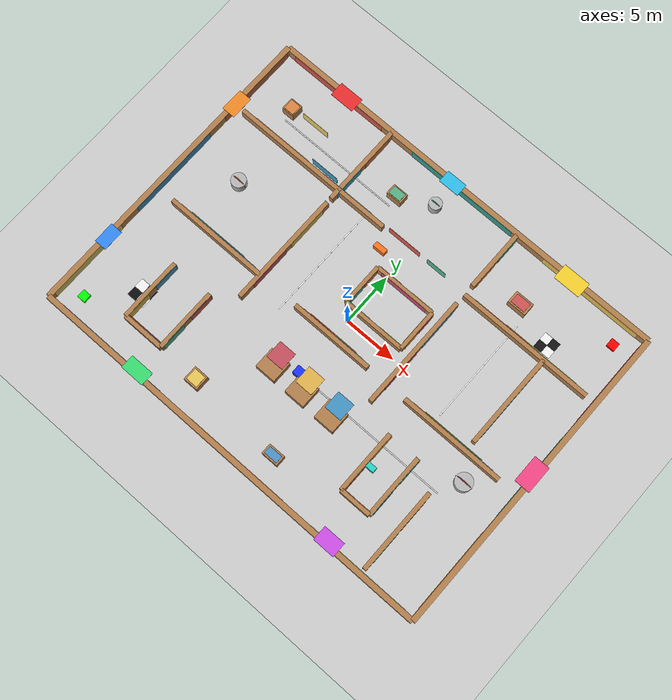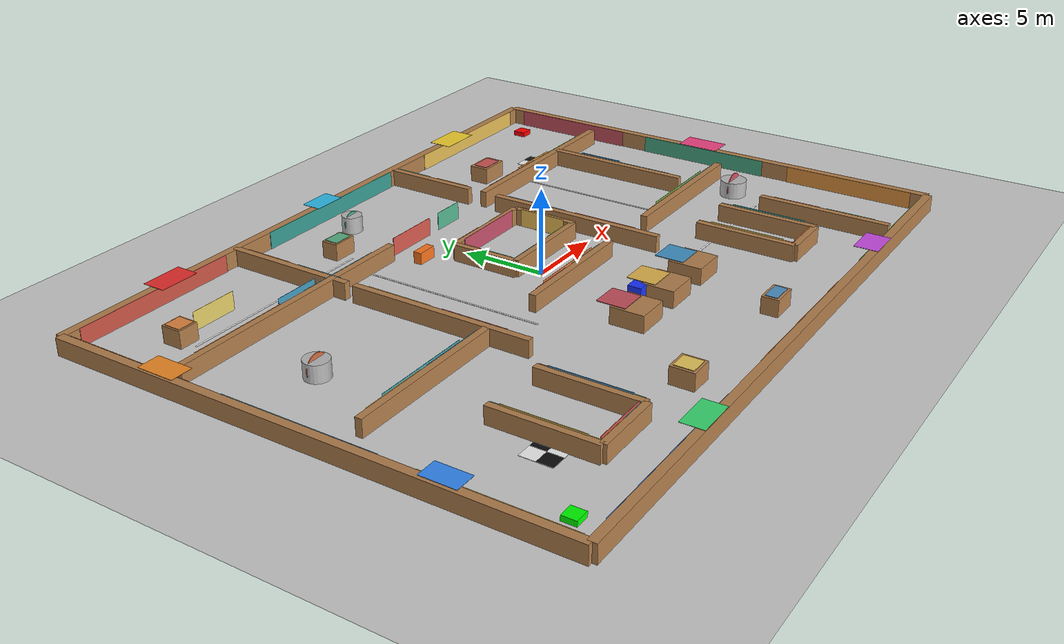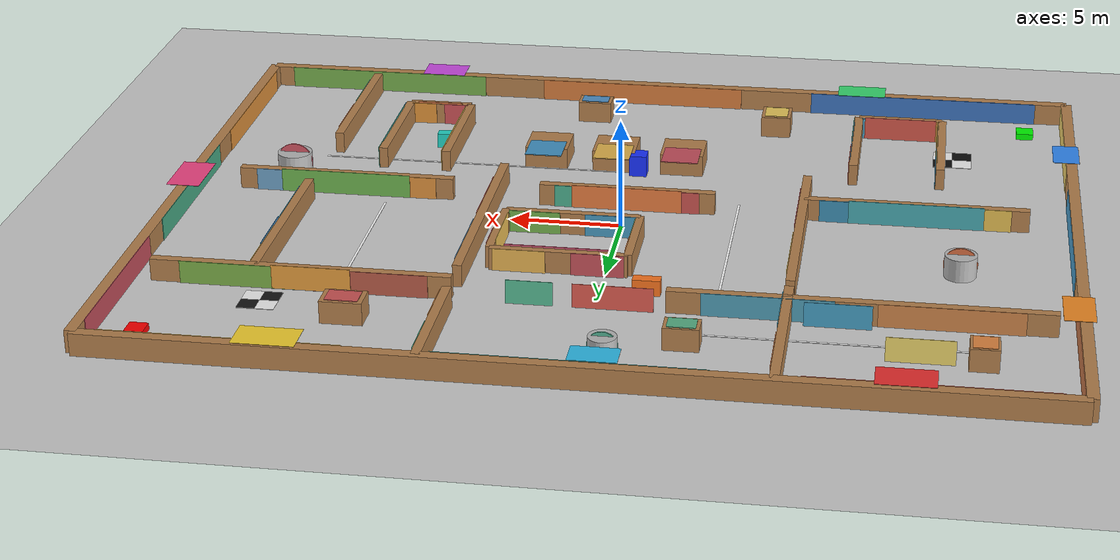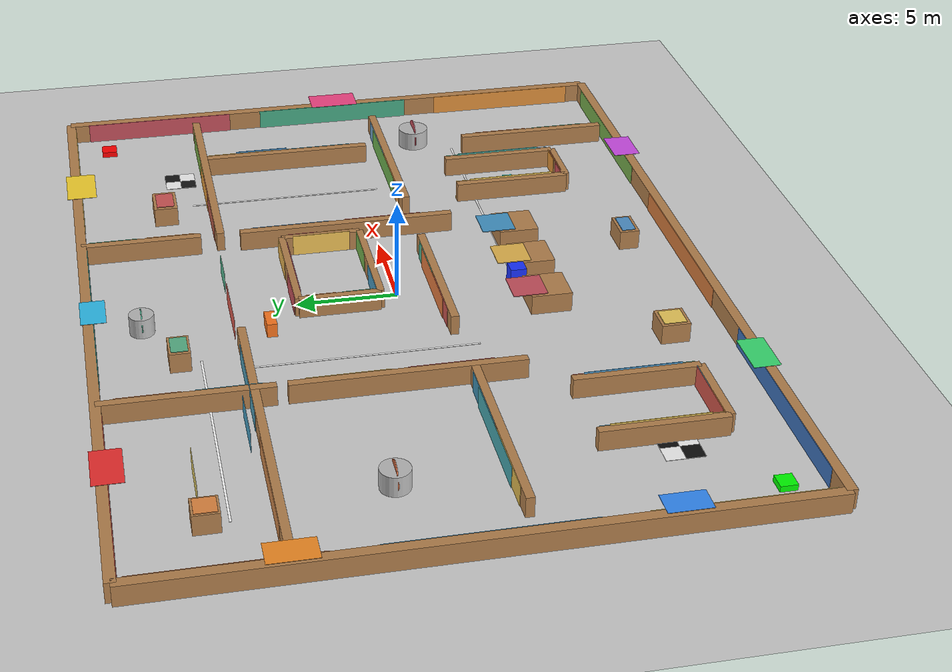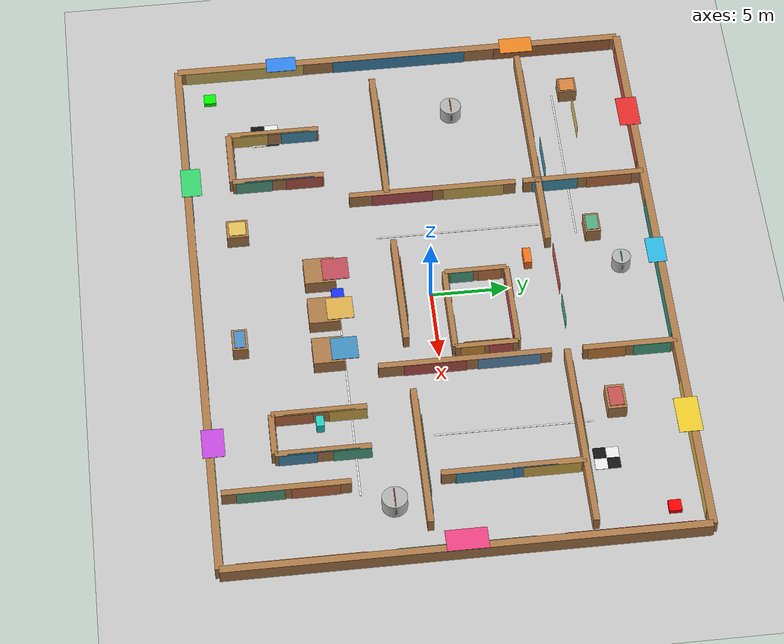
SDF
<?xml version="1.0" ?>
<sdf version="1.6">
  <world name="voronoi_test_complex">

    <!-- 基础物理与插件 -->
    <plugin name="gazebo_ros_state" filename="libgazebo_ros_state.so">
      <ros>
        <namespace>/gazebo</namespace>
      </ros>
      <update_rate>20.0</update_rate>
    </plugin>

    <include>
      <uri>model://sun</uri>
    </include>

    <include>
      <uri>model://ground_plane</uri>
    </include>

    <scene>
      <ambient>0.6 0.6 0.6 1</ambient>
      <background>0.8 0.9 1.0 1</background>
      <shadows>false</shadows>
    </scene>

    <physics type="ode">
      <max_step_size>0.001</max_step_size>
      <real_time_update_rate>1000</real_time_update_rate>
      <real_time_factor>1</real_time_factor>
    </physics>

    <!-- 外边界：整体约 40m x 30m -->
    <model name="boundary_north">
      <static>true</static>
      <pose>0 15 0.5 0 0 0</pose>
      <link name="link">
        <collision name="collision">
          <geometry>
            <box><size>40 0.5 1</size></box>
          </geometry>
        </collision>
        <visual name="visual">
          <geometry>
            <box><size>40 0.5 1</size></box>
          </geometry>
          <material>
            <script>
              <uri>file://media/materials/scripts/gazebo.material</uri>
              <name>Gazebo/Wood</name>
            </script>
          </material>
        </visual>
      </link>
    </model>

    <model name="boundary_south">
      <static>true</static>
      <pose>0 -15 0.5 0 0 0</pose>
      <link name="link">
        <collision name="collision">
          <geometry>
            <box><size>40 0.5 1</size></box>
          </geometry>
        </collision>
        <visual name="visual">
          <geometry>
            <box><size>40 0.5 1</size></box>
          </geometry>
          <material>
            <script>
              <uri>file://media/materials/scripts/gazebo.material</uri>
              <name>Gazebo/Wood</name>
            </script>
          </material>
        </visual>
      </link>
    </model>

    <model name="boundary_west">
      <static>true</static>
      <pose>-20 0 0.5 0 0 0</pose>
      <link name="link">
        <collision name="collision">
          <geometry>
            <box><size>0.5 30 1</size></box>
          </geometry>
        </collision>
        <visual name="visual">
          <geometry>
            <box><size>0.5 30 1</size></box>
          </geometry>
          <material>
            <script>
              <uri>file://media/materials/scripts/gazebo.material</uri>
              <name>Gazebo/Wood</name>
            </script>
          </material>
        </visual>
      </link>
    </model>

    <model name="boundary_east">
      <static>true</static>
      <pose>20 0 0.5 0 0 0</pose>
      <link name="link">
        <collision name="collision">
          <geometry>
            <box><size>0.5 30 1</size></box>
          </geometry>
        </collision>
        <visual name="visual">
          <geometry>
            <box><size>0.5 30 1</size></box>
          </geometry>
          <material>
            <script>
              <uri>file://media/materials/scripts/gazebo.material</uri>
              <name>Gazebo/Wood</name>
            </script>
          </material>
        </visual>
      </link>
    </model>

    <!-- 主分区墙：制造长走廊、门口、绕行 -->
    <model name="wall_h1_left">
      <static>true</static>
      <pose>-11 8 0.5 0 0 0</pose>
      <link name="link">
        <collision name="collision"><geometry><box><size>16 0.4 1</size></box></geometry></collision>
        <visual name="visual"><geometry><box><size>16 0.4 1</size></box></geometry><material><script><uri>file://media/materials/scripts/gazebo.material</uri><name>Gazebo/Wood</name></script></material></visual>
      </link>
    </model>

    <model name="wall_h1_right">
      <static>true</static>
      <pose>12.5 8 0.5 0 0 0</pose>
      <link name="link">
        <collision name="collision"><geometry><box><size>13 0.4 1</size></box></geometry></collision>
        <visual name="visual"><geometry><box><size>13 0.4 1</size></box></geometry><material><script><uri>file://media/materials/scripts/gazebo.material</uri><name>Gazebo/Wood</name></script></material></visual>
      </link>
    </model>

    <model name="wall_h2_left">
      <static>true</static>
      <pose>-13 -2 0.5 0 0 0</pose>
      <link name="link">
        <collision name="collision"><geometry><box><size>10 0.4 1</size></box></geometry></collision>
        <visual name="visual"><geometry><box><size>10 0.4 1</size></box></geometry><material><script><uri>file://media/materials/scripts/gazebo.material</uri><name>Gazebo/Wood</name></script></material></visual>
      </link>
    </model>

    <model name="wall_h2_mid">
      <static>true</static>
      <pose>0 -2 0.5 0 0 0</pose>
      <link name="link">
        <collision name="collision"><geometry><box><size>8 0.4 1</size></box></geometry></collision>
        <visual name="visual"><geometry><box><size>8 0.4 1</size></box></geometry><material><script><uri>file://media/materials/scripts/gazebo.material</uri><name>Gazebo/Wood</name></script></material></visual>
      </link>
    </model>

    <model name="wall_h2_right">
      <static>true</static>
      <pose>13 -2 0.5 0 0 0</pose>
      <link name="link">
        <collision name="collision"><geometry><box><size>10 0.4 1</size></box></geometry></collision>
        <visual name="visual"><geometry><box><size>10 0.4 1</size></box></geometry><material><script><uri>file://media/materials/scripts/gazebo.material</uri><name>Gazebo/Wood</name></script></material></visual>
      </link>
    </model>

    <model name="wall_v1_top">
      <static>true</static>
      <pose>-8 11 0.5 0 0 1.5708</pose>
      <link name="link">
        <collision name="collision"><geometry><box><size>8 0.4 1</size></box></geometry></collision>
        <visual name="visual"><geometry><box><size>8 0.4 1</size></box></geometry><material><script><uri>file://media/materials/scripts/gazebo.material</uri><name>Gazebo/Wood</name></script></material></visual>
      </link>
    </model>

    <model name="wall_v1_bottom">
      <static>true</static>
      <pose>-8 1 0.5 0 0 1.5708</pose>
      <link name="link">
        <collision name="collision"><geometry><box><size>11 0.4 1</size></box></geometry></collision>
        <visual name="visual"><geometry><box><size>11 0.4 1</size></box></geometry><material><script><uri>file://media/materials/scripts/gazebo.material</uri><name>Gazebo/Wood</name></script></material></visual>
      </link>
    </model>

    <model name="wall_v2_top">
      <static>true</static>
      <pose>6 12 0.5 0 0 1.5708</pose>
      <link name="link">
        <collision name="collision"><geometry><box><size>6 0.4 1</size></box></geometry></collision>
        <visual name="visual"><geometry><box><size>6 0.4 1</size></box></geometry><material><script><uri>file://media/materials/scripts/gazebo.material</uri><name>Gazebo/Wood</name></script></material></visual>
      </link>
    </model>

    <model name="wall_v2_bottom">
      <static>true</static>
      <pose>6 1.5 0.5 0 0 1.5708</pose>
      <link name="link">
        <collision name="collision"><geometry><box><size>11 0.4 1</size></box></geometry></collision>
        <visual name="visual"><geometry><box><size>11 0.4 1</size></box></geometry><material><script><uri>file://media/materials/scripts/gazebo.material</uri><name>Gazebo/Wood</name></script></material></visual>
      </link>
    </model>

    <model name="wall_v3_top">
      <static>true</static>
      <pose>14.5 3.5 0.5 0 0 1.5708</pose>
      <link name="link">
        <collision name="collision"><geometry><box><size>9 0.4 1</size></box></geometry></collision>
        <visual name="visual"><geometry><box><size>9 0.4 1</size></box></geometry><material><script><uri>file://media/materials/scripts/gazebo.material</uri><name>Gazebo/Wood</name></script></material></visual>
      </link>
    </model>

    <model name="wall_v3_bottom">
      <static>true</static>
      <pose>14.5 -10.5 0.5 0 0 1.5708</pose>
      <link name="link">
        <collision name="collision"><geometry><box><size>8 0.4 1</size></box></geometry></collision>
        <visual name="visual"><geometry><box><size>8 0.4 1</size></box></geometry><material><script><uri>file://media/materials/scripts/gazebo.material</uri><name>Gazebo/Wood</name></script></material></visual>
      </link>
    </model>

    <!-- 回字形区域 -->
    <model name="ring_top">
      <static>true</static>
      <pose>2 5 0.5 0 0 0</pose>
      <link name="link">
        <collision name="collision"><geometry><box><size>6 0.35 1</size></box></geometry></collision>
        <visual name="visual"><geometry><box><size>6 0.35 1</size></box></geometry><material><script><uri>file://media/materials/scripts/gazebo.material</uri><name>Gazebo/Wood</name></script></material></visual>
      </link>
    </model>

    <model name="ring_bottom">
      <static>true</static>
      <pose>2 1 0.5 0 0 0</pose>
      <link name="link">
        <collision name="collision"><geometry><box><size>6 0.35 1</size></box></geometry></collision>
        <visual name="visual"><geometry><box><size>6 0.35 1</size></box></geometry><material><script><uri>file://media/materials/scripts/gazebo.material</uri><name>Gazebo/Wood</name></script></material></visual>
      </link>
    </model>

    <model name="ring_left">
      <static>true</static>
      <pose>-1 3 0.5 0 0 1.5708</pose>
      <link name="link">
        <collision name="collision"><geometry><box><size>4 0.35 1</size></box></geometry></collision>
        <visual name="visual"><geometry><box><size>4 0.35 1</size></box></geometry><material><script><uri>file://media/materials/scripts/gazebo.material</uri><name>Gazebo/Wood</name></script></material></visual>
      </link>
    </model>

    <model name="ring_right">
      <static>true</static>
      <pose>5 3 0.5 0 0 1.5708</pose>
      <link name="link">
        <collision name="collision"><geometry><box><size>4 0.35 1</size></box></geometry></collision>
        <visual name="visual"><geometry><box><size>4 0.35 1</size></box></geometry><material><script><uri>file://media/materials/scripts/gazebo.material</uri><name>Gazebo/Wood</name></script></material></visual>
      </link>
    </model>

    <!-- U 型障碍 -->
    <model name="u_left">
      <static>true</static>
      <pose>-14 -9 0.5 0 0 1.5708</pose>
      <link name="link">
        <collision name="collision"><geometry><box><size>6 0.4 1</size></box></geometry></collision>
        <visual name="visual"><geometry><box><size>6 0.4 1</size></box></geometry><material><script><uri>file://media/materials/scripts/gazebo.material</uri><name>Gazebo/Wood</name></script></material></visual>
      </link>
    </model>

    <model name="u_right">
      <static>true</static>
      <pose>-10 -9 0.5 0 0 1.5708</pose>
      <link name="link">
        <collision name="collision"><geometry><box><size>6 0.4 1</size></box></geometry></collision>
        <visual name="visual"><geometry><box><size>6 0.4 1</size></box></geometry><material><script><uri>file://media/materials/scripts/gazebo.material</uri><name>Gazebo/Wood</name></script></material></visual>
      </link>
    </model>

    <model name="u_bottom">
      <static>true</static>
      <pose>-12 -12 0.5 0 0 0</pose>
      <link name="link">
        <collision name="collision"><geometry><box><size>4 0.4 1</size></box></geometry></collision>
        <visual name="visual"><geometry><box><size>4 0.4 1</size></box></geometry><material><script><uri>file://media/materials/scripts/gazebo.material</uri><name>Gazebo/Wood</name></script></material></visual>
      </link>
    </model>

    <!-- 死胡同结构 -->
    <model name="deadend_left_wall">
      <static>true</static>
      <pose>9 -8 0.5 0 0 1.5708</pose>
      <link name="link">
        <collision name="collision"><geometry><box><size>6 0.4 1</size></box></geometry></collision>
        <visual name="visual"><geometry><box><size>6 0.4 1</size></box></geometry><material><script><uri>file://media/materials/scripts/gazebo.material</uri><name>Gazebo/Wood</name></script></material></visual>
      </link>
    </model>

    <model name="deadend_right_wall">
      <static>true</static>
      <pose>12 -8 0.5 0 0 1.5708</pose>
      <link name="link">
        <collision name="collision"><geometry><box><size>6 0.4 1</size></box></geometry></collision>
        <visual name="visual"><geometry><box><size>6 0.4 1</size></box></geometry><material><script><uri>file://media/materials/scripts/gazebo.material</uri><name>Gazebo/Wood</name></script></material></visual>
      </link>
    </model>

    <model name="deadend_cap">
      <static>true</static>
      <pose>10.5 -11 0.5 0 0 0</pose>
      <link name="link">
        <collision name="collision"><geometry><box><size>3 0.4 1</size></box></geometry></collision>
        <visual name="visual"><geometry><box><size>3 0.4 1</size></box></geometry><material><script><uri>file://media/materials/scripts/gazebo.material</uri><name>Gazebo/Wood</name></script></material></visual>
      </link>
    </model>

    <!-- 窄通道 / 挤压障碍 -->
    <model name="narrow_box_1">
      <static>true</static>
      <pose>-2 -7 0.5 0 0 0</pose>
      <link name="link">
        <collision name="collision"><geometry><box><size>2.0 2.0 1</size></box></geometry></collision>
        <visual name="visual"><geometry><box><size>2.0 2.0 1</size></box></geometry><material><script><uri>file://media/materials/scripts/gazebo.material</uri><name>Gazebo/Wood</name></script></material></visual>
      </link>
    </model>

    <model name="narrow_box_2">
      <static>true</static>
      <pose>1.2 -7 0.5 0 0 0</pose>
      <link name="link">
        <collision name="collision"><geometry><box><size>2.0 2.0 1</size></box></geometry></collision>
        <visual name="visual"><geometry><box><size>2.0 2.0 1</size></box></geometry><material><script><uri>file://media/materials/scripts/gazebo.material</uri><name>Gazebo/Wood</name></script></material></visual>
      </link>
    </model>

    <model name="narrow_box_3">
      <static>true</static>
      <pose>4.4 -7 0.5 0 0 0</pose>
      <link name="link">
        <collision name="collision"><geometry><box><size>2.0 2.0 1</size></box></geometry></collision>
        <visual name="visual"><geometry><box><size>2.0 2.0 1</size></box></geometry><material><script><uri>file://media/materials/scripts/gazebo.material</uri><name>Gazebo/Wood</name></script></material></visual>
      </link>
    </model>

    <!-- 散布障碍：测试骨架毛刺和局部绕障 -->
    <model name="box_obs_1">
      <static>true</static>
      <pose>-16 11 0.5 0 0 0</pose>
      <link name="link">
        <collision name="collision"><geometry><box><size>1.2 1.2 1</size></box></geometry></collision>
        <visual name="visual"><geometry><box><size>1.2 1.2 1</size></box></geometry><material><script><uri>file://media/materials/scripts/gazebo.material</uri><name>Gazebo/Wood</name></script></material></visual>
      </link>
    </model>

    <model name="box_obs_2">
      <static>true</static>
      <pose>-4 11 0.5 0 0 0</pose>
      <link name="link">
        <collision name="collision"><geometry><box><size>1.5 1.0 1</size></box></geometry></collision>
        <visual name="visual"><geometry><box><size>1.5 1.0 1</size></box></geometry><material><script><uri>file://media/materials/scripts/gazebo.material</uri><name>Gazebo/Wood</name></script></material></visual>
      </link>
    </model>

    <model name="box_obs_3">
      <static>true</static>
      <pose>10 10.5 0.5 0 0 0</pose>
      <link name="link">
        <collision name="collision"><geometry><box><size>1.8 1.2 1</size></box></geometry></collision>
        <visual name="visual"><geometry><box><size>1.8 1.2 1</size></box></geometry><material><script><uri>file://media/materials/scripts/gazebo.material</uri><name>Gazebo/Wood</name></script></material></visual>
      </link>
    </model>

    <model name="box_obs_4">
      <static>true</static>
      <pose>-6 -12 0.5 0 0 0</pose>
      <link name="link">
        <collision name="collision"><geometry><box><size>1.4 1.4 1</size></box></geometry></collision>
        <visual name="visual"><geometry><box><size>1.4 1.4 1</size></box></geometry><material><script><uri>file://media/materials/scripts/gazebo.material</uri><name>Gazebo/Wood</name></script></material></visual>
      </link>
    </model>

    <model name="box_obs_5">
      <static>true</static>
      <pose>3 -12.5 0.5 0 0 0</pose>
      <link name="link">
        <collision name="collision"><geometry><box><size>1.6 1.0 1</size></box></geometry></collision>
        <visual name="visual"><geometry><box><size>1.6 1.0 1</size></box></geometry><material><script><uri>file://media/materials/scripts/gazebo.material</uri><name>Gazebo/Wood</name></script></material></visual>
      </link>
    </model>

    <model name="cyl_obs_1">
      <static>true</static>
      <pose>-15 3 0.5 0 0 0</pose>
      <link name="link">
        <collision name="collision"><geometry><cylinder><radius>0.7</radius><length>1</length></cylinder></geometry></collision>
        <visual name="visual"><geometry><cylinder><radius>0.7</radius><length>1</length></cylinder></geometry></visual>
      </link>
    </model>

    <model name="cyl_obs_2">
      <static>true</static>
      <pose>-1 12.5 0.5 0 0 0</pose>
      <link name="link">
        <collision name="collision"><geometry><cylinder><radius>0.6</radius><length>1</length></cylinder></geometry></collision>
        <visual name="visual"><geometry><cylinder><radius>0.6</radius><length>1</length></cylinder></geometry></visual>
      </link>
    </model>

    <model name="cyl_obs_3">
      <static>true</static>
      <pose>16 -4 0.5 0 0 0</pose>
      <link name="link">
        <collision name="collision"><geometry><cylinder><radius>0.8</radius><length>1</length></cylinder></geometry></collision>
        <visual name="visual"><geometry><cylinder><radius>0.8</radius><length>1</length></cylinder></geometry></visual>
      </link>
    </model>

    <model name="slam_dense_wall_textures">
      <static>true</static>
      <pose>0 0 0 0 0 0</pose>
      <link name="link">
        <visual name="north_a">
          <pose>-14 14.74 0.5 0 0 0</pose>
          <geometry><box><size>10.0 0.03 1.02</size></box></geometry>
          <material><ambient>0.82 0.34 0.28 1</ambient><diffuse>0.82 0.34 0.28 1</diffuse></material>
        </visual>
        <visual name="north_b">
          <pose>0 14.74 0.5 0 0 0</pose>
          <geometry><box><size>11.0 0.03 1.02</size></box></geometry>
          <material><ambient>0.22 0.62 0.58 1</ambient><diffuse>0.22 0.62 0.58 1</diffuse></material>
        </visual>
        <visual name="north_c">
          <pose>14 14.74 0.5 0 0 0</pose>
          <geometry><box><size>10.0 0.03 1.02</size></box></geometry>
          <material><ambient>0.91 0.75 0.34 1</ambient><diffuse>0.91 0.75 0.34 1</diffuse></material>
        </visual>
        <visual name="south_a">
          <pose>-13 -14.74 0.5 0 0 0</pose>
          <geometry><box><size>11.0 0.03 1.02</size></box></geometry>
          <material><ambient>0.24 0.45 0.74 1</ambient><diffuse>0.24 0.45 0.74 1</diffuse></material>
        </visual>
        <visual name="south_b">
          <pose>1 -14.74 0.5 0 0 0</pose>
          <geometry><box><size>10.0 0.03 1.02</size></box></geometry>
          <material><ambient>0.84 0.49 0.24 1</ambient><diffuse>0.84 0.49 0.24 1</diffuse></material>
        </visual>
        <visual name="south_c">
          <pose>14 -14.74 0.5 0 0 0</pose>
          <geometry><box><size>10.0 0.03 1.02</size></box></geometry>
          <material><ambient>0.46 0.68 0.30 1</ambient><diffuse>0.46 0.68 0.30 1</diffuse></material>
        </visual>
        <visual name="west_a">
          <pose>-19.74 10.5 0.5 0 0 0</pose>
          <geometry><box><size>0.03 8.0 1.02</size></box></geometry>
          <material><ambient>0.69 0.41 0.25 1</ambient><diffuse>0.69 0.41 0.25 1</diffuse></material>
        </visual>
        <visual name="west_b">
          <pose>-19.74 0 0.5 0 0 0</pose>
          <geometry><box><size>0.03 9.0 1.02</size></box></geometry>
          <material><ambient>0.25 0.55 0.72 1</ambient><diffuse>0.25 0.55 0.72 1</diffuse></material>
        </visual>
        <visual name="west_c">
          <pose>-19.74 -10.5 0.5 0 0 0</pose>
          <geometry><box><size>0.03 8.0 1.02</size></box></geometry>
          <material><ambient>0.85 0.74 0.38 1</ambient><diffuse>0.85 0.74 0.38 1</diffuse></material>
        </visual>
        <visual name="east_a">
          <pose>19.74 10 0.5 0 0 0</pose>
          <geometry><box><size>0.03 8.0 1.02</size></box></geometry>
          <material><ambient>0.77 0.31 0.36 1</ambient><diffuse>0.77 0.31 0.36 1</diffuse></material>
        </visual>
        <visual name="east_b">
          <pose>19.74 0 0.5 0 0 0</pose>
          <geometry><box><size>0.03 8.5 1.02</size></box></geometry>
          <material><ambient>0.28 0.67 0.52 1</ambient><diffuse>0.28 0.67 0.52 1</diffuse></material>
        </visual>
        <visual name="east_c">
          <pose>19.74 -10 0.5 0 0 0</pose>
          <geometry><box><size>0.03 8.0 1.02</size></box></geometry>
          <material><ambient>0.88 0.57 0.23 1</ambient><diffuse>0.88 0.57 0.23 1</diffuse></material>
        </visual>

        <visual name="h1_left_a">
          <pose>-14.7 8.22 0.5 0 0 0</pose>
          <geometry><box><size>6.0 0.03 1.02</size></box></geometry>
          <material><ambient>0.80 0.52 0.29 1</ambient><diffuse>0.80 0.52 0.29 1</diffuse></material>
        </visual>
        <visual name="h1_left_b">
          <pose>-7.2 8.22 0.5 0 0 0</pose>
          <geometry><box><size>5.5 0.03 1.02</size></box></geometry>
          <material><ambient>0.31 0.61 0.71 1</ambient><diffuse>0.31 0.61 0.71 1</diffuse></material>
        </visual>
        <visual name="h1_right_a">
          <pose>9.5 8.22 0.5 0 0 0</pose>
          <geometry><box><size>5.0 0.03 1.02</size></box></geometry>
          <material><ambient>0.72 0.36 0.28 1</ambient><diffuse>0.72 0.36 0.28 1</diffuse></material>
        </visual>
        <visual name="h1_right_b">
          <pose>15.2 8.22 0.5 0 0 0</pose>
          <geometry><box><size>5.0 0.03 1.02</size></box></geometry>
          <material><ambient>0.48 0.68 0.28 1</ambient><diffuse>0.48 0.68 0.28 1</diffuse></material>
        </visual>
        <visual name="h2_left_a">
          <pose>-15.2 -1.78 0.5 0 0 0</pose>
          <geometry><box><size>4.0 0.03 1.02</size></box></geometry>
          <material><ambient>0.89 0.74 0.32 1</ambient><diffuse>0.89 0.74 0.32 1</diffuse></material>
        </visual>
        <visual name="h2_left_b">
          <pose>-10.7 -1.78 0.5 0 0 0</pose>
          <geometry><box><size>4.0 0.03 1.02</size></box></geometry>
          <material><ambient>0.24 0.56 0.70 1</ambient><diffuse>0.24 0.56 0.70 1</diffuse></material>
        </visual>
        <visual name="h2_mid_a">
          <pose>-1.8 -1.78 0.5 0 0 0</pose>
          <geometry><box><size>3.0 0.03 1.02</size></box></geometry>
          <material><ambient>0.79 0.33 0.31 1</ambient><diffuse>0.79 0.33 0.31 1</diffuse></material>
        </visual>
        <visual name="h2_mid_b">
          <pose>1.8 -1.78 0.5 0 0 0</pose>
          <geometry><box><size>3.0 0.03 1.02</size></box></geometry>
          <material><ambient>0.30 0.69 0.56 1</ambient><diffuse>0.30 0.69 0.56 1</diffuse></material>
        </visual>
        <visual name="h2_right_a">
          <pose>10.8 -1.78 0.5 0 0 0</pose>
          <geometry><box><size>4.0 0.03 1.02</size></box></geometry>
          <material><ambient>0.87 0.57 0.24 1</ambient><diffuse>0.87 0.57 0.24 1</diffuse></material>
        </visual>
        <visual name="h2_right_b">
          <pose>15.2 -1.78 0.5 0 0 0</pose>
          <geometry><box><size>4.0 0.03 1.02</size></box></geometry>
          <material><ambient>0.43 0.63 0.77 1</ambient><diffuse>0.43 0.63 0.77 1</diffuse></material>
        </visual>

        <visual name="v1_top_a">
          <pose>-7.78 12.7 0.5 0 0 0</pose>
          <geometry><box><size>0.03 3.0 1.02</size></box></geometry>
          <material><ambient>0.79 0.47 0.28 1</ambient><diffuse>0.79 0.47 0.28 1</diffuse></material>
        </visual>
        <visual name="v1_top_b">
          <pose>-7.78 9.1 0.5 0 0 0</pose>
          <geometry><box><size>0.03 3.0 1.02</size></box></geometry>
          <material><ambient>0.28 0.61 0.71 1</ambient><diffuse>0.28 0.61 0.71 1</diffuse></material>
        </visual>
        <visual name="v1_bottom_a">
          <pose>-7.78 3.7 0.5 0 0 0</pose>
          <geometry><box><size>0.03 4.0 1.02</size></box></geometry>
          <material><ambient>0.86 0.72 0.34 1</ambient><diffuse>0.86 0.72 0.34 1</diffuse></material>
        </visual>
        <visual name="v1_bottom_b">
          <pose>-7.78 -1.0 0.5 0 0 0</pose>
          <geometry><box><size>0.03 4.0 1.02</size></box></geometry>
          <material><ambient>0.75 0.33 0.35 1</ambient><diffuse>0.75 0.33 0.35 1</diffuse></material>
        </visual>
        <visual name="v2_top_a">
          <pose>6.22 13.4 0.5 0 0 0</pose>
          <geometry><box><size>0.03 2.4 1.02</size></box></geometry>
          <material><ambient>0.31 0.69 0.55 1</ambient><diffuse>0.31 0.69 0.55 1</diffuse></material>
        </visual>
        <visual name="v2_top_b">
          <pose>6.22 10.5 0.5 0 0 0</pose>
          <geometry><box><size>0.03 2.4 1.02</size></box></geometry>
          <material><ambient>0.84 0.53 0.25 1</ambient><diffuse>0.84 0.53 0.25 1</diffuse></material>
        </visual>
        <visual name="v2_bottom_a">
          <pose>6.22 4.3 0.5 0 0 0</pose>
          <geometry><box><size>0.03 4.0 1.02</size></box></geometry>
          <material><ambient>0.40 0.60 0.77 1</ambient><diffuse>0.40 0.60 0.77 1</diffuse></material>
        </visual>
        <visual name="v2_bottom_b">
          <pose>6.22 -0.4 0.5 0 0 0</pose>
          <geometry><box><size>0.03 4.0 1.02</size></box></geometry>
          <material><ambient>0.77 0.34 0.30 1</ambient><diffuse>0.77 0.34 0.30 1</diffuse></material>
        </visual>
        <visual name="v3_top_a">
          <pose>14.72 5.9 0.5 0 0 0</pose>
          <geometry><box><size>0.03 3.6 1.02</size></box></geometry>
          <material><ambient>0.89 0.72 0.31 1</ambient><diffuse>0.89 0.72 0.31 1</diffuse></material>
        </visual>
        <visual name="v3_top_b">
          <pose>14.72 1.7 0.5 0 0 0</pose>
          <geometry><box><size>0.03 3.6 1.02</size></box></geometry>
          <material><ambient>0.29 0.63 0.73 1</ambient><diffuse>0.29 0.63 0.73 1</diffuse></material>
        </visual>
        <visual name="v3_bottom_a">
          <pose>14.72 -8.7 0.5 0 0 0</pose>
          <geometry><box><size>0.03 3.0 1.02</size></box></geometry>
          <material><ambient>0.80 0.46 0.28 1</ambient><diffuse>0.80 0.46 0.28 1</diffuse></material>
        </visual>
        <visual name="v3_bottom_b">
          <pose>14.72 -12.1 0.5 0 0 0</pose>
          <geometry><box><size>0.03 3.0 1.02</size></box></geometry>
          <material><ambient>0.36 0.68 0.54 1</ambient><diffuse>0.36 0.68 0.54 1</diffuse></material>
        </visual>

        <visual name="ring_top_a">
          <pose>0.3 5.19 0.5 0 0 0</pose>
          <geometry><box><size>2.3 0.03 1.02</size></box></geometry>
          <material><ambient>0.77 0.32 0.35 1</ambient><diffuse>0.77 0.32 0.35 1</diffuse></material>
        </visual>
        <visual name="ring_top_b">
          <pose>3.7 5.19 0.5 0 0 0</pose>
          <geometry><box><size>2.3 0.03 1.02</size></box></geometry>
          <material><ambient>0.90 0.70 0.32 1</ambient><diffuse>0.90 0.70 0.32 1</diffuse></material>
        </visual>
        <visual name="ring_bottom_a">
          <pose>0.3 1.19 0.5 0 0 0</pose>
          <geometry><box><size>2.3 0.03 1.02</size></box></geometry>
          <material><ambient>0.28 0.60 0.75 1</ambient><diffuse>0.28 0.60 0.75 1</diffuse></material>
        </visual>
        <visual name="ring_bottom_b">
          <pose>3.7 1.19 0.5 0 0 0</pose>
          <geometry><box><size>2.3 0.03 1.02</size></box></geometry>
          <material><ambient>0.45 0.69 0.30 1</ambient><diffuse>0.45 0.69 0.30 1</diffuse></material>
        </visual>
        <visual name="ring_left_a">
          <pose>-0.81 3.9 0.5 0 0 0</pose>
          <geometry><box><size>0.03 1.5 1.02</size></box></geometry>
          <material><ambient>0.81 0.48 0.26 1</ambient><diffuse>0.81 0.48 0.26 1</diffuse></material>
        </visual>
        <visual name="ring_left_b">
          <pose>-0.81 2.1 0.5 0 0 0</pose>
          <geometry><box><size>0.03 1.5 1.02</size></box></geometry>
          <material><ambient>0.32 0.68 0.56 1</ambient><diffuse>0.32 0.68 0.56 1</diffuse></material>
        </visual>
        <visual name="ring_right_a">
          <pose>5.19 3.9 0.5 0 0 0</pose>
          <geometry><box><size>0.03 1.5 1.02</size></box></geometry>
          <material><ambient>0.79 0.33 0.33 1</ambient><diffuse>0.79 0.33 0.33 1</diffuse></material>
        </visual>
        <visual name="ring_right_b">
          <pose>5.19 2.1 0.5 0 0 0</pose>
          <geometry><box><size>0.03 1.5 1.02</size></box></geometry>
          <material><ambient>0.88 0.60 0.24 1</ambient><diffuse>0.88 0.60 0.24 1</diffuse></material>
        </visual>

        <visual name="u_left_a">
          <pose>-13.78 -7.3 0.5 0 0 0</pose>
          <geometry><box><size>0.03 2.4 1.02</size></box></geometry>
          <material><ambient>0.28 0.60 0.74 1</ambient><diffuse>0.28 0.60 0.74 1</diffuse></material>
        </visual>
        <visual name="u_left_b">
          <pose>-13.78 -10.6 0.5 0 0 0</pose>
          <geometry><box><size>0.03 2.4 1.02</size></box></geometry>
          <material><ambient>0.85 0.72 0.33 1</ambient><diffuse>0.85 0.72 0.33 1</diffuse></material>
        </visual>
        <visual name="u_right_a">
          <pose>-9.78 -7.3 0.5 0 0 0</pose>
          <geometry><box><size>0.03 2.4 1.02</size></box></geometry>
          <material><ambient>0.77 0.35 0.31 1</ambient><diffuse>0.77 0.35 0.31 1</diffuse></material>
        </visual>
        <visual name="u_right_b">
          <pose>-9.78 -10.6 0.5 0 0 0</pose>
          <geometry><box><size>0.03 2.4 1.02</size></box></geometry>
          <material><ambient>0.35 0.67 0.55 1</ambient><diffuse>0.35 0.67 0.55 1</diffuse></material>
        </visual>
        <visual name="u_bottom_a">
          <pose>-13.0 -11.79 0.5 0 0 0</pose>
          <geometry><box><size>1.7 0.03 1.02</size></box></geometry>
          <material><ambient>0.84 0.53 0.24 1</ambient><diffuse>0.84 0.53 0.24 1</diffuse></material>
        </visual>
        <visual name="u_bottom_b">
          <pose>-11.0 -11.79 0.5 0 0 0</pose>
          <geometry><box><size>1.7 0.03 1.02</size></box></geometry>
          <material><ambient>0.33 0.63 0.75 1</ambient><diffuse>0.33 0.63 0.75 1</diffuse></material>
        </visual>

        <visual name="dead_left_a">
          <pose>9.22 -6.2 0.5 0 0 0</pose>
          <geometry><box><size>0.03 2.4 1.02</size></box></geometry>
          <material><ambient>0.88 0.71 0.32 1</ambient><diffuse>0.88 0.71 0.32 1</diffuse></material>
        </visual>
        <visual name="dead_left_b">
          <pose>9.22 -9.6 0.5 0 0 0</pose>
          <geometry><box><size>0.03 2.4 1.02</size></box></geometry>
          <material><ambient>0.78 0.45 0.27 1</ambient><diffuse>0.78 0.45 0.27 1</diffuse></material>
        </visual>
        <visual name="dead_right_a">
          <pose>12.22 -6.2 0.5 0 0 0</pose>
          <geometry><box><size>0.03 2.4 1.02</size></box></geometry>
          <material><ambient>0.32 0.69 0.55 1</ambient><diffuse>0.32 0.69 0.55 1</diffuse></material>
        </visual>
        <visual name="dead_right_b">
          <pose>12.22 -9.6 0.5 0 0 0</pose>
          <geometry><box><size>0.03 2.4 1.02</size></box></geometry>
          <material><ambient>0.30 0.58 0.74 1</ambient><diffuse>0.30 0.58 0.74 1</diffuse></material>
        </visual>
        <visual name="dead_cap_a">
          <pose>9.7 -10.79 0.5 0 0 0</pose>
          <geometry><box><size>1.2 0.03 1.02</size></box></geometry>
          <material><ambient>0.80 0.32 0.34 1</ambient><diffuse>0.80 0.32 0.34 1</diffuse></material>
        </visual>
        <visual name="dead_cap_b">
          <pose>11.3 -10.79 0.5 0 0 0</pose>
          <geometry><box><size>1.2 0.03 1.02</size></box></geometry>
          <material><ambient>0.88 0.58 0.22 1</ambient><diffuse>0.88 0.58 0.22 1</diffuse></material>
        </visual>
      </link>
    </model>

    <model name="slam_region_textures">
      <static>true</static>
      <pose>0 0 0 0 0 0</pose>
      <link name="link">
        <visual name="region_northwest_panel">
          <pose>-13.5 11.2 0.55 0 0 0</pose>
          <geometry><box><size>2.8 0.02 1.08</size></box></geometry>
          <material><ambient>0.92 0.83 0.42 1</ambient><diffuse>0.92 0.83 0.42 1</diffuse></material>
        </visual>
        <visual name="region_northwest_bar">
          <pose>-10.1 8.6 0.55 0 0 1.5708</pose>
          <geometry><box><size>0.02 2.8 1.08</size></box></geometry>
          <material><ambient>0.27 0.62 0.76 1</ambient><diffuse>0.27 0.62 0.76 1</diffuse></material>
        </visual>

        <visual name="region_north_center_panel">
          <pose>-0.8 8.25 0.55 0 0 0</pose>
          <geometry><box><size>3.4 0.02 1.08</size></box></geometry>
          <material><ambient>0.86 0.36 0.31 1</ambient><diffuse>0.86 0.36 0.31 1</diffuse></material>
        </visual>
        <visual name="region_north_center_bar">
          <pose>2.7 8.25 0.55 0 0 0</pose>
          <geometry><box><size>2.0 0.02 1.08</size></box></geometry>
          <material><ambient>0.34 0.73 0.58 1</ambient><diffuse>0.34 0.73 0.58 1</diffuse></material>
        </visual>

        <visual name="region_northeast_panel">
          <pose>12.0 8.25 0.55 0 0 0</pose>
          <geometry><box><size>3.4 0.02 1.08</size></box></geometry>
          <material><ambient>0.89 0.61 0.24 1</ambient><diffuse>0.89 0.61 0.24 1</diffuse></material>
        </visual>
        <visual name="region_northeast_bar">
          <pose>14.72 4.8 0.55 0 0 0</pose>
          <geometry><box><size>0.02 2.8 1.08</size></box></geometry>
          <material><ambient>0.28 0.56 0.78 1</ambient><diffuse>0.28 0.56 0.78 1</diffuse></material>
        </visual>

        <visual name="region_ring_top_panel">
          <pose>2.0 4.82 0.55 0 0 0</pose>
          <geometry><box><size>4.8 0.02 1.08</size></box></geometry>
          <material><ambient>0.79 0.32 0.43 1</ambient><diffuse>0.79 0.32 0.43 1</diffuse></material>
        </visual>
        <visual name="region_ring_right_bar">
          <pose>4.82 3.0 0.55 0 0 0</pose>
          <geometry><box><size>0.02 2.9 1.08</size></box></geometry>
          <material><ambient>0.94 0.76 0.34 1</ambient><diffuse>0.94 0.76 0.34 1</diffuse></material>
        </visual>

        <visual name="region_midwest_panel">
          <pose>-13.0 -1.72 0.55 0 0 0</pose>
          <geometry><box><size>6.0 0.02 1.08</size></box></geometry>
          <material><ambient>0.28 0.66 0.69 1</ambient><diffuse>0.28 0.66 0.69 1</diffuse></material>
        </visual>
        <visual name="region_midcenter_panel">
          <pose>0.0 -1.72 0.55 0 0 0</pose>
          <geometry><box><size>5.0 0.02 1.08</size></box></geometry>
          <material><ambient>0.90 0.49 0.25 1</ambient><diffuse>0.90 0.49 0.25 1</diffuse></material>
        </visual>
        <visual name="region_mideast_panel">
          <pose>13.0 -1.72 0.55 0 0 0</pose>
          <geometry><box><size>6.0 0.02 1.08</size></box></geometry>
          <material><ambient>0.43 0.70 0.31 1</ambient><diffuse>0.43 0.70 0.31 1</diffuse></material>
        </visual>

        <visual name="region_u_left_bar">
          <pose>-13.82 -8.9 0.55 0 0 0</pose>
          <geometry><box><size>0.02 4.6 1.08</size></box></geometry>
          <material><ambient>0.86 0.73 0.33 1</ambient><diffuse>0.86 0.73 0.33 1</diffuse></material>
        </visual>
        <visual name="region_u_right_bar">
          <pose>-9.82 -8.9 0.55 0 0 0</pose>
          <geometry><box><size>0.02 4.6 1.08</size></box></geometry>
          <material><ambient>0.31 0.60 0.79 1</ambient><diffuse>0.31 0.60 0.79 1</diffuse></material>
        </visual>
        <visual name="region_u_floor_band">
          <pose>-12.0 -11.72 0.55 0 0 0</pose>
          <geometry><box><size>3.4 0.02 1.08</size></box></geometry>
          <material><ambient>0.82 0.34 0.29 1</ambient><diffuse>0.82 0.34 0.29 1</diffuse></material>
        </visual>

        <visual name="region_deadend_left_bar">
          <pose>9.18 -8.0 0.55 0 0 0</pose>
          <geometry><box><size>0.02 4.5 1.08</size></box></geometry>
          <material><ambient>0.94 0.79 0.36 1</ambient><diffuse>0.94 0.79 0.36 1</diffuse></material>
        </visual>
        <visual name="region_deadend_right_bar">
          <pose>12.18 -8.0 0.55 0 0 0</pose>
          <geometry><box><size>0.02 4.5 1.08</size></box></geometry>
          <material><ambient>0.29 0.66 0.61 1</ambient><diffuse>0.29 0.66 0.61 1</diffuse></material>
        </visual>
        <visual name="region_deadend_cap">
          <pose>10.5 -10.82 0.55 0 0 0</pose>
          <geometry><box><size>2.2 0.02 1.08</size></box></geometry>
          <material><ambient>0.83 0.45 0.25 1</ambient><diffuse>0.83 0.45 0.25 1</diffuse></material>
        </visual>

        <visual name="region_narrow_1_top">
          <pose>-2.0 -5.98 1.02 0 0 0</pose>
          <geometry><box><size>1.7 1.7 0.04</size></box></geometry>
          <material><ambient>0.77 0.31 0.36 1</ambient><diffuse>0.77 0.31 0.36 1</diffuse></material>
        </visual>
        <visual name="region_narrow_2_top">
          <pose>1.2 -5.98 1.02 0 0 0</pose>
          <geometry><box><size>1.7 1.7 0.04</size></box></geometry>
          <material><ambient>0.88 0.70 0.30 1</ambient><diffuse>0.88 0.70 0.30 1</diffuse></material>
        </visual>
        <visual name="region_narrow_3_top">
          <pose>4.4 -5.98 1.02 0 0 0</pose>
          <geometry><box><size>1.7 1.7 0.04</size></box></geometry>
          <material><ambient>0.26 0.58 0.77 1</ambient><diffuse>0.26 0.58 0.77 1</diffuse></material>
        </visual>

        <visual name="region_scatter_1_top">
          <pose>-16.0 11.0 1.02 0 0 0</pose>
          <geometry><box><size>1.0 1.0 0.04</size></box></geometry>
          <material><ambient>0.87 0.52 0.25 1</ambient><diffuse>0.87 0.52 0.25 1</diffuse></material>
        </visual>
        <visual name="region_scatter_2_top">
          <pose>-4.0 11.0 1.02 0 0 0</pose>
          <geometry><box><size>1.2 0.8 0.04</size></box></geometry>
          <material><ambient>0.34 0.69 0.52 1</ambient><diffuse>0.34 0.69 0.52 1</diffuse></material>
        </visual>
        <visual name="region_scatter_3_top">
          <pose>10.0 10.5 1.02 0 0 0</pose>
          <geometry><box><size>1.4 0.9 0.04</size></box></geometry>
          <material><ambient>0.80 0.33 0.33 1</ambient><diffuse>0.80 0.33 0.33 1</diffuse></material>
        </visual>
        <visual name="region_scatter_4_top">
          <pose>-6.0 -12.0 1.02 0 0 0</pose>
          <geometry><box><size>1.1 1.1 0.04</size></box></geometry>
          <material><ambient>0.91 0.78 0.35 1</ambient><diffuse>0.91 0.78 0.35 1</diffuse></material>
        </visual>
        <visual name="region_scatter_5_top">
          <pose>3.0 -12.5 1.02 0 0 0</pose>
          <geometry><box><size>1.3 0.7 0.04</size></box></geometry>
          <material><ambient>0.31 0.57 0.78 1</ambient><diffuse>0.31 0.57 0.78 1</diffuse></material>
        </visual>

        <visual name="region_cyl_1_band">
          <pose>-15.0 3.0 0.55 1.5708 0 0</pose>
          <geometry><cylinder><radius>0.74</radius><length>0.05</length></cylinder></geometry>
          <material><ambient>0.84 0.43 0.26 1</ambient><diffuse>0.84 0.43 0.26 1</diffuse></material>
        </visual>
        <visual name="region_cyl_2_band">
          <pose>-1.0 12.5 0.55 1.5708 0 0</pose>
          <geometry><cylinder><radius>0.64</radius><length>0.05</length></cylinder></geometry>
          <material><ambient>0.32 0.69 0.57 1</ambient><diffuse>0.32 0.69 0.57 1</diffuse></material>
        </visual>
        <visual name="region_cyl_3_band">
          <pose>16.0 -4.0 0.55 1.5708 0 0</pose>
          <geometry><cylinder><radius>0.84</radius><length>0.05</length></cylinder></geometry>
          <material><ambient>0.81 0.33 0.38 1</ambient><diffuse>0.81 0.33 0.38 1</diffuse></material>
        </visual>
      </link>
    </model>

    <!-- 视觉纹理增强：给前向相机更多可重复特征 -->
    <model name="xfeat_texture_landmarks">
      <static>true</static>
      <link name="link">
        <!-- 墙上海报：高对比、不同颜色、不同尺寸 -->
        <visual name="poster_north_left">
          <pose>-13.0 14.73 1.25 1.5708 0 0</pose>
          <geometry><box><size>2.4 0.02 1.4</size></box></geometry>
          <material><ambient>0.92 0.18 0.18 1</ambient><diffuse>0.92 0.18 0.18 1</diffuse></material>
        </visual>
        <visual name="poster_north_mid">
          <pose>-1.0 14.73 1.35 1.5708 0 0</pose>
          <geometry><box><size>2.0 0.02 1.2</size></box></geometry>
          <material><ambient>0.18 0.74 0.92 1</ambient><diffuse>0.18 0.74 0.92 1</diffuse></material>
        </visual>
        <visual name="poster_north_right">
          <pose>12.0 14.73 1.20 1.5708 0 0</pose>
          <geometry><box><size>2.6 0.02 1.5</size></box></geometry>
          <material><ambient>0.96 0.82 0.18 1</ambient><diffuse>0.96 0.82 0.18 1</diffuse></material>
        </visual>

        <visual name="poster_south_left">
          <pose>-10.0 -14.73 1.25 1.5708 0 0</pose>
          <geometry><box><size>2.3 0.02 1.3</size></box></geometry>
          <material><ambient>0.22 0.86 0.44 1</ambient><diffuse>0.22 0.86 0.44 1</diffuse></material>
        </visual>
        <visual name="poster_south_right">
          <pose>11.0 -14.73 1.30 1.5708 0 0</pose>
          <geometry><box><size>2.1 0.02 1.4</size></box></geometry>
          <material><ambient>0.80 0.30 0.90 1</ambient><diffuse>0.80 0.30 0.90 1</diffuse></material>
        </visual>

        <visual name="poster_west_top">
          <pose>-19.73 8.0 1.25 1.5708 0 1.5708</pose>
          <geometry><box><size>2.2 0.02 1.3</size></box></geometry>
          <material><ambient>0.94 0.54 0.14 1</ambient><diffuse>0.94 0.54 0.14 1</diffuse></material>
        </visual>
        <visual name="poster_west_bottom">
          <pose>-19.73 -8.0 1.25 1.5708 0 1.5708</pose>
          <geometry><box><size>2.0 0.02 1.2</size></box></geometry>
          <material><ambient>0.20 0.54 0.96 1</ambient><diffuse>0.20 0.54 0.96 1</diffuse></material>
        </visual>
        <visual name="poster_east_mid">
          <pose>19.73 0.0 1.35 1.5708 0 1.5708</pose>
          <geometry><box><size>2.6 0.02 1.5</size></box></geometry>
          <material><ambient>0.95 0.27 0.52 1</ambient><diffuse>0.95 0.27 0.52 1</diffuse></material>
        </visual>

        <!-- 走廊边框线：给地面增加稳定边缘 -->
        <visual name="lane_line_main_1">
          <pose>-10.0 10.0 0.011 0 0 0</pose>
          <geometry><box><size>12.0 0.10 0.02</size></box></geometry>
          <material><ambient>1 1 1 1</ambient><diffuse>1 1 1 1</diffuse></material>
        </visual>
        <visual name="lane_line_main_2">
          <pose>8.0 -6.0 0.011 0 0 0</pose>
          <geometry><box><size>14.0 0.10 0.02</size></box></geometry>
          <material><ambient>1 1 1 1</ambient><diffuse>1 1 1 1</diffuse></material>
        </visual>
        <visual name="lane_line_vertical_1">
          <pose>-5.0 2.5 0.011 0 0 1.5708</pose>
          <geometry><box><size>11.0 0.10 0.02</size></box></geometry>
          <material><ambient>1 1 1 1</ambient><diffuse>1 1 1 1</diffuse></material>
        </visual>
        <visual name="lane_line_vertical_2">
          <pose>11.0 4.0 0.011 0 0 1.5708</pose>
          <geometry><box><size>10.0 0.10 0.02</size></box></geometry>
          <material><ambient>1 1 1 1</ambient><diffuse>1 1 1 1</diffuse></material>
        </visual>

        <!-- 棋盘地贴：局部高频纹理 -->
        <visual name="checker_a1">
          <pose>-15.0 -10.0 0.012 0 0 0</pose>
          <geometry><box><size>0.9 0.9 0.02</size></box></geometry>
          <material><ambient>0.05 0.05 0.05 1</ambient><diffuse>0.05 0.05 0.05 1</diffuse></material>
        </visual>
        <visual name="checker_a2">
          <pose>-14.1 -10.0 0.012 0 0 0</pose>
          <geometry><box><size>0.9 0.9 0.02</size></box></geometry>
          <material><ambient>0.95 0.95 0.95 1</ambient><diffuse>0.95 0.95 0.95 1</diffuse></material>
        </visual>
        <visual name="checker_a3">
          <pose>-15.0 -9.1 0.012 0 0 0</pose>
          <geometry><box><size>0.9 0.9 0.02</size></box></geometry>
          <material><ambient>0.95 0.95 0.95 1</ambient><diffuse>0.95 0.95 0.95 1</diffuse></material>
        </visual>
        <visual name="checker_a4">
          <pose>-14.1 -9.1 0.012 0 0 0</pose>
          <geometry><box><size>0.9 0.9 0.02</size></box></geometry>
          <material><ambient>0.05 0.05 0.05 1</ambient><diffuse>0.05 0.05 0.05 1</diffuse></material>
        </visual>

        <visual name="checker_b1">
          <pose>13.5 9.0 0.012 0 0 0</pose>
          <geometry><box><size>0.8 0.8 0.02</size></box></geometry>
          <material><ambient>0.08 0.08 0.08 1</ambient><diffuse>0.08 0.08 0.08 1</diffuse></material>
        </visual>
        <visual name="checker_b2">
          <pose>14.3 9.0 0.012 0 0 0</pose>
          <geometry><box><size>0.8 0.8 0.02</size></box></geometry>
          <material><ambient>0.95 0.95 0.95 1</ambient><diffuse>0.95 0.95 0.95 1</diffuse></material>
        </visual>
        <visual name="checker_b3">
          <pose>13.5 9.8 0.012 0 0 0</pose>
          <geometry><box><size>0.8 0.8 0.02</size></box></geometry>
          <material><ambient>0.95 0.95 0.95 1</ambient><diffuse>0.95 0.95 0.95 1</diffuse></material>
        </visual>
        <visual name="checker_b4">
          <pose>14.3 9.8 0.012 0 0 0</pose>
          <geometry><box><size>0.8 0.8 0.02</size></box></geometry>
          <material><ambient>0.08 0.08 0.08 1</ambient><diffuse>0.08 0.08 0.08 1</diffuse></material>
        </visual>

        <!-- 箭头/标识牌替代：亮色方向块 -->
        <visual name="sign_zone_1">
          <pose>-2.0 6.5 0.35 0 0 0</pose>
          <geometry><box><size>1.2 0.5 0.7</size></box></geometry>
          <material><ambient>0.98 0.46 0.12 1</ambient><diffuse>0.98 0.46 0.12 1</diffuse></material>
        </visual>
        <visual name="sign_zone_2">
          <pose>9.5 -8.0 0.35 0 0 0</pose>
          <geometry><box><size>1.0 0.5 0.7</size></box></geometry>
          <material><ambient>0.14 0.84 0.78 1</ambient><diffuse>0.14 0.84 0.78 1</diffuse></material>
        </visual>
      </link>
    </model>

    <!-- 动态障碍：由 ROS 节点驱动在仿真中移动 -->
    <model name="dynamic_box_1">
      <static>false</static>
      <allow_auto_disable>false</allow_auto_disable>
      <pose>0 -6 0.5 0 0 0</pose>
      <link name="link">
        <gravity>false</gravity>
        <kinematic>true</kinematic>
        <inertial>
          <mass>5.0</mass>
          <inertia>
            <ixx>0.5</ixx>
            <iyy>0.5</iyy>
            <izz>0.5</izz>
            <ixy>0</ixy>
            <ixz>0</ixz>
            <iyz>0</iyz>
          </inertia>
        </inertial>
        <collision name="collision">
          <geometry><box><size>0.8 0.8 1.0</size></box></geometry>
        </collision>
        <visual name="visual">
          <geometry><box><size>0.8 0.8 1.0</size></box></geometry>
          <material>
            <ambient>0.1 0.2 1.0 1</ambient>
            <diffuse>0.1 0.2 1.0 1</diffuse>
          </material>
        </visual>
      </link>
    </model>

    <!-- 起点 / 终点可视化标记 -->
    <model name="start_marker">
      <static>true</static>
      <pose>-18 -13 0.15 0 0 0</pose>
      <link name="link">
        <visual name="visual">
          <geometry><box><size>0.8 0.8 0.3</size></box></geometry>
          <material>
            <ambient>0 1 0 1</ambient>
            <diffuse>0 1 0 1</diffuse>
          </material>
        </visual>
      </link>
    </model>

    <model name="goal_marker">
      <static>true</static>
      <pose>18 13 0.15 0 0 0</pose>
      <link name="link">
        <visual name="visual">
          <geometry><box><size>0.8 0.8 0.3</size></box></geometry>
          <material>
            <ambient>1 0 0 1</ambient>
            <diffuse>1 0 0 1</diffuse>
          </material>
        </visual>
      </link>
    </model>

  </world>
</sdf>
